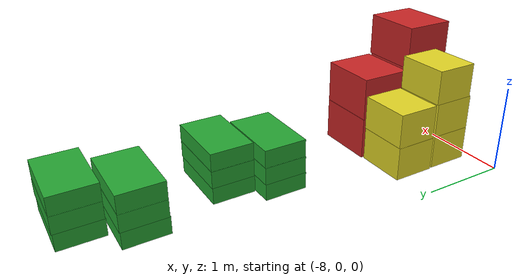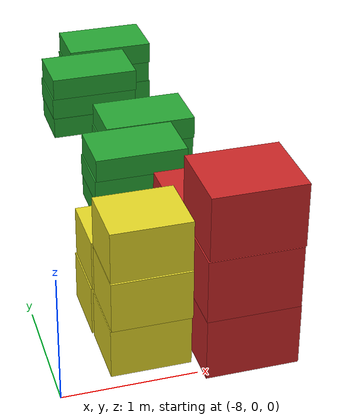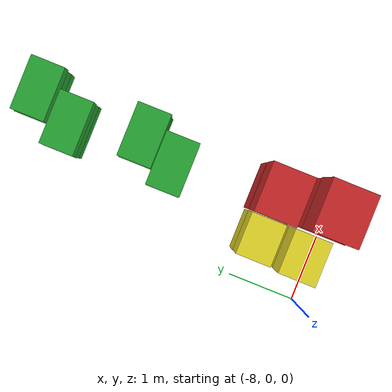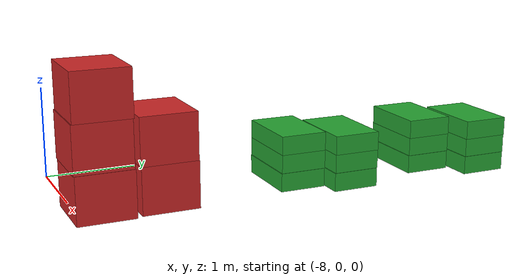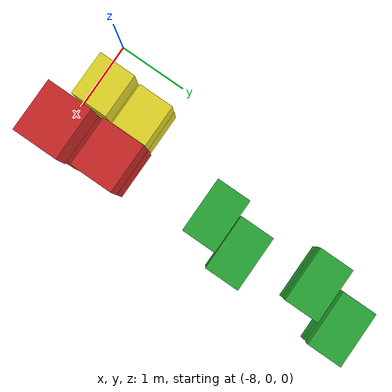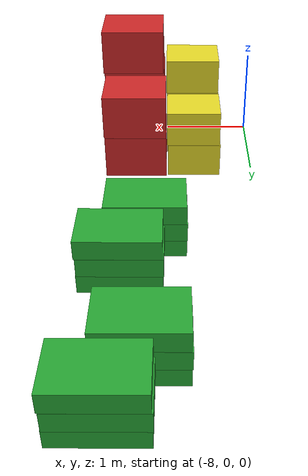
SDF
<sdf version="1.6">
 <world name="default">
  <include><uri>model://sun</uri></include>
  <model name="baggage_C_x3_30">
   <model name="baggage_C_0">
    <static>1</static>
    <link name="link">
     <collision name="collision"><geometry><box><size>0.6 0.5 0.4</size></box></geometry></collision>
     <visual name="visual">
      <geometry><box><size>0.6 0.5 0.4</size></box></geometry>
      <material>
       <script><uri>file://media/materials/scripts/gazebo.material</uri><name>Gazebo/Yellow</name></script>
      </material>
     </visual>
    </link>
    <pose>0 0 0.2 0 -0 0</pose>
   </model>
   <model name="baggage_C_1">
    <static>1</static>
    <link name="link">
     <collision name="collision"><geometry><box><size>0.6 0.5 0.4</size></box></geometry></collision>
     <visual name="visual">
      <geometry><box><size>0.6 0.5 0.4</size></box></geometry>
      <material>
       <script><uri>file://media/materials/scripts/gazebo.material</uri><name>Gazebo/Yellow</name></script>
      </material>
     </visual>
    </link>
    <pose>0.0062 -0.0069 0.6 0 -0 0</pose>
   </model>
   <model name="baggage_C_2">
    <static>1</static>
    <link name="link">
     <collision name="collision"><geometry><box><size>0.6 0.5 0.4</size></box></geometry></collision>
     <visual name="visual">
      <geometry><box><size>0.6 0.5 0.4</size></box></geometry>
      <material>
       <script><uri>file://media/materials/scripts/gazebo.material</uri><name>Gazebo/Yellow</name></script>
      </material>
     </visual>
    </link>
    <pose>0.0089 0.0083 1 0 -0 0</pose>
   </model>
   <pose>-7.30642 0.372682 0 0 -0 0</pose>
  </model>
  <model name="baggage_C_x2_31">
   <model name="baggage_C_0">
    <static>1</static>
    <link name="link">
     <collision name="collision"><geometry><box><size>0.6 0.5 0.4</size></box></geometry></collision>
     <visual name="visual">
      <geometry><box><size>0.6 0.5 0.4</size></box></geometry>
      <material>
       <script><uri>file://media/materials/scripts/gazebo.material</uri><name>Gazebo/Yellow</name></script>
      </material>
     </visual>
    </link>
    <pose>0 0 0.2 0 -0 0</pose>
   </model>
   <model name="baggage_C_1">
    <static>1</static>
    <link name="link">
     <collision name="collision"><geometry><box><size>0.6 0.5 0.4</size></box></geometry></collision>
     <visual name="visual">
      <geometry><box><size>0.6 0.5 0.4</size></box></geometry>
      <material>
       <script><uri>file://media/materials/scripts/gazebo.material</uri><name>Gazebo/Yellow</name></script>
      </material>
     </visual>
    </link>
    <pose>0.0093 -0.002 0.6 0 -0 0</pose>
   </model>
   <pose>-7.3144 0.904439 0 0 -0 0</pose>
  </model>
  <model name="baggage_A_x3_21">
   <model name="baggage_A_0">
    <static>1</static>
    <link name="link">
     <collision name="collision"><geometry><box><size>0.7 0.6 0.5</size></box></geometry></collision>
     <visual name="visual">
      <geometry><box><size>0.7 0.6 0.5</size></box></geometry>
      <material>
       <script><uri>file://media/materials/scripts/gazebo.material</uri><name>Gazebo/Red</name></script>
      </material>
     </visual>
    </link>
    <pose>0 0 0.25 0 -0 0</pose>
   </model>
   <model name="baggage_A_1">
    <static>1</static>
    <link name="link">
     <collision name="collision"><geometry><box><size>0.7 0.6 0.5</size></box></geometry></collision>
     <visual name="visual">
      <geometry><box><size>0.7 0.6 0.5</size></box></geometry>
      <material>
       <script><uri>file://media/materials/scripts/gazebo.material</uri><name>Gazebo/Red</name></script>
      </material>
     </visual>
    </link>
    <pose>-0.006 -0.0077 0.75 0 -0 0</pose>
   </model>
   <model name="baggage_A_2">
    <static>1</static>
    <link name="link">
     <collision name="collision"><geometry><box><size>0.7 0.6 0.5</size></box></geometry></collision>
     <visual name="visual">
      <geometry><box><size>0.7 0.6 0.5</size></box></geometry>
      <material>
       <script><uri>file://media/materials/scripts/gazebo.material</uri><name>Gazebo/Red</name></script>
      </material>
     </visual>
    </link>
    <pose>0.0045 0.0005 1.25 0 -0 0</pose>
   </model>
   <pose>-6.61164 0.215172 0 0 -0 0</pose>
  </model>
  <model name="baggage_A_x2_19">
   <model name="baggage_A_0">
    <static>1</static>
    <link name="link">
     <collision name="collision"><geometry><box><size>0.7 0.6 0.5</size></box></geometry></collision>
     <visual name="visual">
      <geometry><box><size>0.7 0.6 0.5</size></box></geometry>
      <material>
       <script><uri>file://media/materials/scripts/gazebo.material</uri><name>Gazebo/Red</name></script>
      </material>
     </visual>
    </link>
    <pose>0 0 0.25 0 -0 0</pose>
   </model>
   <model name="baggage_A_1">
    <static>1</static>
    <link name="link">
     <collision name="collision"><geometry><box><size>0.7 0.6 0.5</size></box></geometry></collision>
     <visual name="visual">
      <geometry><box><size>0.7 0.6 0.5</size></box></geometry>
      <material>
       <script><uri>file://media/materials/scripts/gazebo.material</uri><name>Gazebo/Red</name></script>
      </material>
     </visual>
    </link>
    <pose>0.0063 -0.0062 0.75 0 -0 0</pose>
   </model>
   <pose>-6.64511 0.874852 0 0 -0 0</pose>
  </model>
  <model name="baggage_D_x3_28">
   <model name="baggage_D_0">
    <static>1</static>
    <link name="link">
     <collision name="collision"><geometry><box><size>0.8 0.5 0.2</size></box></geometry></collision>
     <visual name="visual">
      <geometry><box><size>0.8 0.5 0.2</size></box></geometry>
      <material>
       <script><uri>file://media/materials/scripts/gazebo.material</uri><name>Gazebo/Green</name></script>
      </material>
     </visual>
    </link>
    <pose>0 0 0.1 0 -0 0</pose>
   </model>
   <model name="baggage_D_1">
    <static>1</static>
    <link name="link">
     <collision name="collision"><geometry><box><size>0.8 0.5 0.2</size></box></geometry></collision>
     <visual name="visual">
      <geometry><box><size>0.8 0.5 0.2</size></box></geometry>
      <material>
       <script><uri>file://media/materials/scripts/gazebo.material</uri><name>Gazebo/Green</name></script>
      </material>
     </visual>
    </link>
    <pose>-0.0056 0.0083 0.3 0 -0 0</pose>
   </model>
   <model name="baggage_D_2">
    <static>1</static>
    <link name="link">
     <collision name="collision"><geometry><box><size>0.8 0.5 0.2</size></box></geometry></collision>
     <visual name="visual">
      <geometry><box><size>0.8 0.5 0.2</size></box></geometry>
      <material>
       <script><uri>file://media/materials/scripts/gazebo.material</uri><name>Gazebo/Green</name></script>
      </material>
     </visual>
    </link>
    <pose>0.0053 0.0057 0.5 0 -0 0</pose>
   </model>
   <pose>-6.81021 2.3733 0 0 -0 0</pose>
  </model>
  <model name="baggage_D_x3_29">
   <model name="baggage_D_0">
    <static>1</static>
    <link name="link">
     <collision name="collision"><geometry><box><size>0.8 0.5 0.2</size></box></geometry></collision>
     <visual name="visual">
      <geometry><box><size>0.8 0.5 0.2</size></box></geometry>
      <material>
       <script><uri>file://media/materials/scripts/gazebo.material</uri><name>Gazebo/Green</name></script>
      </material>
     </visual>
    </link>
    <pose>0 0 0.1 0 -0 0</pose>
   </model>
   <model name="baggage_D_1">
    <static>1</static>
    <link name="link">
     <collision name="collision"><geometry><box><size>0.8 0.5 0.2</size></box></geometry></collision>
     <visual name="visual">
      <geometry><box><size>0.8 0.5 0.2</size></box></geometry>
      <material>
       <script><uri>file://media/materials/scripts/gazebo.material</uri><name>Gazebo/Green</name></script>
      </material>
     </visual>
    </link>
    <pose>-0.0056 0.0083 0.3 0 -0 0</pose>
   </model>
   <model name="baggage_D_2">
    <static>1</static>
    <link name="link">
     <collision name="collision"><geometry><box><size>0.8 0.5 0.2</size></box></geometry></collision>
     <visual name="visual">
      <geometry><box><size>0.8 0.5 0.2</size></box></geometry>
      <material>
       <script><uri>file://media/materials/scripts/gazebo.material</uri><name>Gazebo/Green</name></script>
      </material>
     </visual>
    </link>
    <pose>0.0053 0.0057 0.5 0 -0 0</pose>
   </model>
   <pose>-6.58573 2.88666 0 0 -0 0</pose>
  </model>
  <model name="baggage_D_x3_33">
   <model name="baggage_D_0">
    <static>1</static>
    <link name="link">
     <collision name="collision"><geometry><box><size>0.8 0.5 0.2</size></box></geometry></collision>
     <visual name="visual">
      <geometry><box><size>0.8 0.5 0.2</size></box></geometry>
      <material>
       <script><uri>file://media/materials/scripts/gazebo.material</uri><name>Gazebo/Green</name></script>
      </material>
     </visual>
    </link>
    <pose>0 0 0.1 0 -0 0</pose>
   </model>
   <model name="baggage_D_1">
    <static>1</static>
    <link name="link">
     <collision name="collision"><geometry><box><size>0.8 0.5 0.2</size></box></geometry></collision>
     <visual name="visual">
      <geometry><box><size>0.8 0.5 0.2</size></box></geometry>
      <material>
       <script><uri>file://media/materials/scripts/gazebo.material</uri><name>Gazebo/Green</name></script>
      </material>
     </visual>
    </link>
    <pose>-0.0056 0.0083 0.3 0 -0 0</pose>
   </model>
   <model name="baggage_D_2">
    <static>1</static>
    <link name="link">
     <collision name="collision"><geometry><box><size>0.8 0.5 0.2</size></box></geometry></collision>
     <visual name="visual">
      <geometry><box><size>0.8 0.5 0.2</size></box></geometry>
      <material>
       <script><uri>file://media/materials/scripts/gazebo.material</uri><name>Gazebo/Green</name></script>
      </material>
     </visual>
    </link>
    <pose>0.0053 0.0057 0.5 0 -0 0</pose>
   </model>
   <pose>-6.53517 4.48877 0 0 -0 0</pose>
  </model>
  <model name="baggage_D_x3_34">
   <model name="baggage_D_0">
    <static>1</static>
    <link name="link">
     <collision name="collision"><geometry><box><size>0.8 0.5 0.2</size></box></geometry></collision>
     <visual name="visual">
      <geometry><box><size>0.8 0.5 0.2</size></box></geometry>
      <material>
       <script><uri>file://media/materials/scripts/gazebo.material</uri><name>Gazebo/Green</name></script>
      </material>
     </visual>
    </link>
    <pose>0 0 0.1 0 -0 0</pose>
   </model>
   <model name="baggage_D_1">
    <static>1</static>
    <link name="link">
     <collision name="collision"><geometry><box><size>0.8 0.5 0.2</size></box></geometry></collision>
     <visual name="visual">
      <geometry><box><size>0.8 0.5 0.2</size></box></geometry>
      <material>
       <script><uri>file://media/materials/scripts/gazebo.material</uri><name>Gazebo/Green</name></script>
      </material>
     </visual>
    </link>
    <pose>-0.0056 0.0083 0.3 0 -0 0</pose>
   </model>
   <model name="baggage_D_2">
    <static>1</static>
    <link name="link">
     <collision name="collision"><geometry><box><size>0.8 0.5 0.2</size></box></geometry></collision>
     <visual name="visual">
      <geometry><box><size>0.8 0.5 0.2</size></box></geometry>
      <material>
       <script><uri>file://media/materials/scripts/gazebo.material</uri><name>Gazebo/Green</name></script>
      </material>
     </visual>
    </link>
    <pose>0.0053 0.0057 0.5 0 -0 0</pose>
   </model>
   <pose>-6.82832 3.94231 0 0 -0 0</pose>
  </model>
 </world>
</sdf>
